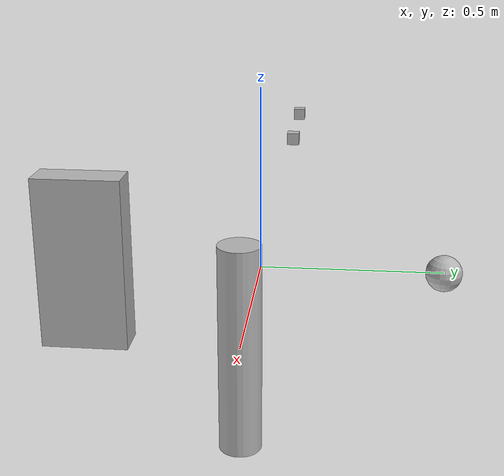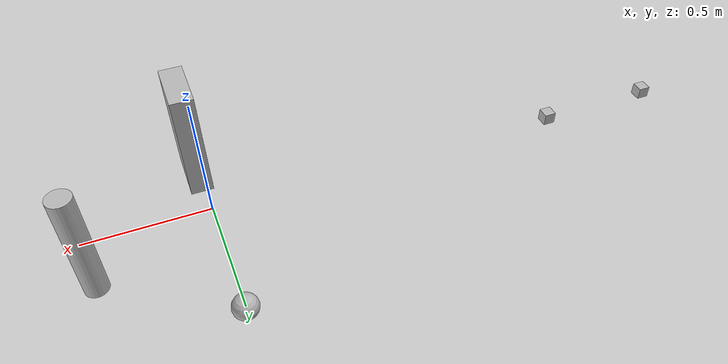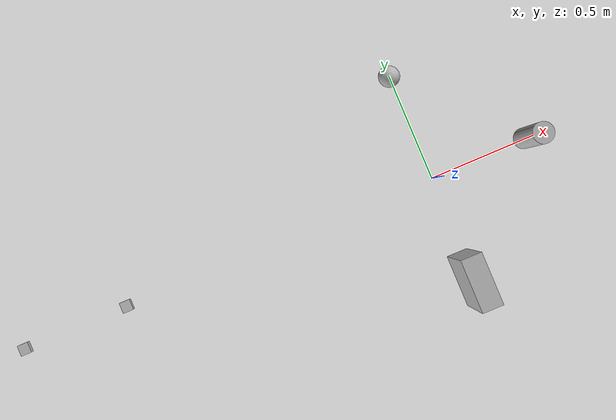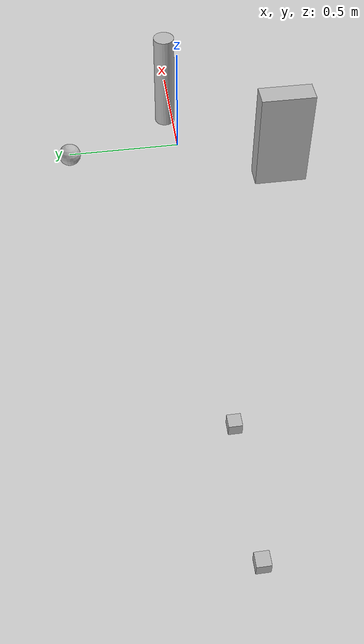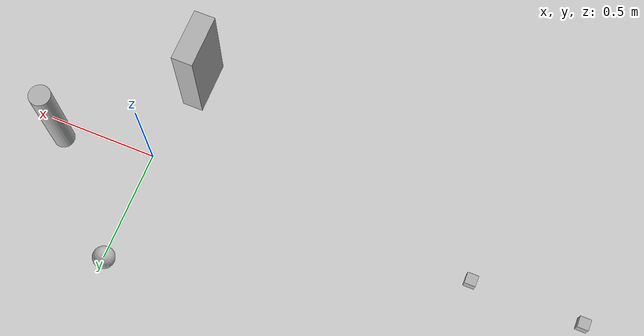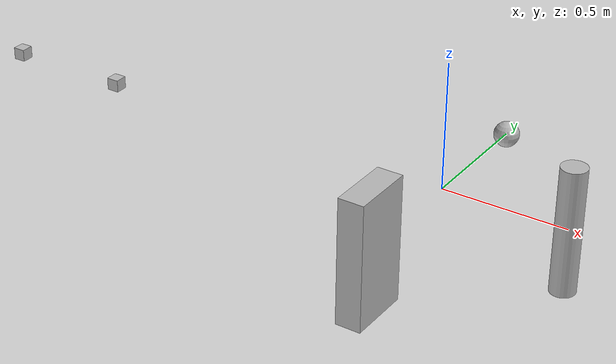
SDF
<sdf version="1.3">
 <world name="world_1">
  <scene>
   <ambient>0.5 0.5 0.5 1.0</ambient>
   <background>0.5 0.5 0.5 1.0</background>
   <shadows>true</shadows>
   <fog>
    <color>0.0 0.0 0.5 0.5</color>
    <type>linear</type>
    <start>2.0</start>
    <end>10.0</end>
    <density>0.5</density>
   </fog>
  </scene>
  <physics type="ode">
   <max_contacts>250</max_contacts>
   <ode>
    <solver><type>quick</type><dt>0.001</dt><iters>20</iters><sor>1.3</sor></solver>
    <constraints>
     <cfm>0</cfm>
     <erp>0.2</erp>
     <contact_max_correcting_vel>100.0</contact_max_correcting_vel>
     <contact_surface_layer>0.0</contact_surface_layer>
    </constraints>
   </ode>
   <gravity>0.0000 0 0</gravity>
  </physics>
  <model name="model_1">
   <pose>-1.5 0.0 0.0 0.0 0.0 0.0</pose>
   <link name="link_1">
    <inertial>
     <inertia><ixx>1.0</ixx><ixy>0.0</ixy><ixz>0.0</ixz><iyy>1.0</iyy><iyz>0.0</iyz><izz>1.0</izz></inertia>
     <mass>10.0</mass>
    </inertial>
    <visual name="visual_box">
     <geometry><box><size>0.05 0.05 0.05</size></box></geometry>
     <laser_retro>100.0</laser_retro>
    </visual>
    <collision name="collision_box">
     <max_contacts>250</max_contacts>
     <geometry><box><size>0.05 0.05 0.05</size></box></geometry>
     <surface>
      <friction>
       <ode><mu>0.5</mu><mu2>0.2</mu2><fdir1>1.0 0 0</fdir1><slip1>0</slip1><slip2>0</slip2></ode>
      </friction>
      <bounce><restitution_coefficient>0</restitution_coefficient><threshold>1000000.0</threshold></bounce>
      <contact>
       <ode>
        <soft_cfm>0</soft_cfm>
        <soft_erp>0.2</soft_erp>
        <kp>1e15</kp>
        <kd>1e13</kd>
        <max_vel>100.0</max_vel>
        <min_depth>0.0001</min_depth>
       </ode>
      </contact>
     </surface>
     <laser_retro>100.0</laser_retro>
    </collision>
    <sensor name="sensor_ray" type="ray">
     <ray>
      <scan display="true">
       <horizontal>
        <samples>300</samples>
        <resolution>1.0</resolution>
        <min_angle>-0.5236</min_angle>
        <max_angle>0.5236</max_angle>
       </horizontal>
       <vertical>
        <samples>100</samples>
        <resolution>1.0</resolution>
        <min_angle>-0.5236</min_angle>
        <max_angle>0.5236</max_angle>
       </vertical>
      </scan>
      <range><min>0.05</min><max>50.0</max></range>
     </ray>
     <plugin name="plugin_1" filename="libgazebo_ros_block_laser.so">
      <gaussianNoise>0.00</gaussianNoise>
      <alwaysOn>true</alwaysOn>
      <updateRate>20</updateRate>
      <topicName>test_block_laser</topicName>
      <frameName>base_link</frameName>
     </plugin>
     <always_on>true</always_on>
     <update_rate>10.0</update_rate>
    </sensor>
    <gravity>false</gravity>
    <self_collide>true</self_collide>
   </link>
   <static>false</static>
  </model>
  <model name="camera_model">
   <plugin name="plugin_1" filename="libmove_model_test.so"/>
   <pose>-2.0 0.0 0.0 0.0 0.0 0.0</pose>
   <link name="link_1">
    <inertial>
     <inertia><ixx>1.0</ixx><ixy>0.0</ixy><ixz>0.0</ixz><iyy>1.0</iyy><iyz>0.0</iyz><izz>1.0</izz></inertia>
     <mass>10.0</mass>
    </inertial>
    <visual name="visual_box">
     <geometry><box><size>0.05 0.05 0.05</size></box></geometry>
     <laser_retro>100.0</laser_retro>
    </visual>
    <collision name="collision_box">
     <max_contacts>250</max_contacts>
     <geometry><box><size>0.05 0.05 0.05</size></box></geometry>
     <surface>
      <friction>
       <ode><mu>0.5</mu><mu2>0.2</mu2><fdir1>1.0 0 0</fdir1><slip1>0</slip1><slip2>0</slip2></ode>
      </friction>
      <bounce><restitution_coefficient>0</restitution_coefficient><threshold>1000000.0</threshold></bounce>
      <contact>
       <ode>
        <soft_cfm>0</soft_cfm>
        <soft_erp>0.2</soft_erp>
        <kp>1e15</kp>
        <kd>1e13</kd>
        <max_vel>100.0</max_vel>
        <min_depth>0.0001</min_depth>
       </ode>
      </contact>
     </surface>
     <laser_retro>100.0</laser_retro>
    </collision>
    <sensor name="sensor_camera" type="camera">
     <camera>
      <horizontal_fov>2.57</horizontal_fov>
      <image><width>640</width><height>480</height><format>R8G8B8</format></image>
      <clip near="0.01" far="100.0"/>
      <save enabled="false" path="/tmp"/>
     </camera>
     <plugin name="plugin_1" filename="libgazebo_ros_camera.so">
      <alwaysOn>1</alwaysOn>
      <updateRate>10.0</updateRate>
      <cameraName>/test</cameraName>
      <imageTopicName>image_raw</imageTopicName>
      <pointCloudTopicName>points</pointCloudTopicName>
      <cameraInfoTopicName>camera_info</cameraInfoTopicName>
      <frameName>base_link</frameName>
      <pointCloudCutoff>0.5</pointCloudCutoff>
      <distortion_k1>0.00000001</distortion_k1>
      <distortion_k2>0.00000001</distortion_k2>
      <distortion_k3>0.00000001</distortion_k3>
      <distortion_t1>0.00000001</distortion_t1>
      <distortion_t2>0.00000001</distortion_t2>
     </plugin>
     <always_on>true</always_on>
     <update_rate>10.0</update_rate>
    </sensor>
    <gravity>false</gravity>
    <self_collide>true</self_collide>
   </link>
   <static>false</static>
  </model>
  <model name="object1">
   <link name="link_1">
    <pose>-0.1 -0.5 -0.5 0.0 0.0 0.0</pose>
    <inertial>
     <inertia><ixx>1.0</ixx><ixy>0.0</ixy><ixz>0.0</ixz><iyy>1.0</iyy><iyz>0.0</iyz><izz>1.0</izz></inertia>
     <mass>10.0</mass>
    </inertial>
    <visual name="visual_box">
     <pose>0.1 0.0 0.5 0.0 0.0 0.0</pose>
     <geometry><box><size>0.1 0.25 0.5</size></box></geometry>
     <laser_retro>100.0</laser_retro>
    </visual>
    <collision name="collision_box">
     <pose>0.1 0.0 0.5 0.0 0.0 0.0</pose>
     <max_contacts>250</max_contacts>
     <geometry><box><size>0.1 0.25 0.5</size></box></geometry>
     <surface>
      <friction>
       <ode><mu>0.5</mu><mu2>0.2</mu2><fdir1>1.0 0 0</fdir1><slip1>0</slip1><slip2>0</slip2></ode>
      </friction>
      <bounce><restitution_coefficient>0</restitution_coefficient><threshold>1000000.0</threshold></bounce>
      <contact>
       <ode>
        <soft_cfm>0</soft_cfm>
        <soft_erp>0.2</soft_erp>
        <kp>1e15</kp>
        <kd>1e13</kd>
        <max_vel>100.0</max_vel>
        <min_depth>0.0001</min_depth>
       </ode>
      </contact>
     </surface>
     <laser_retro>100.0</laser_retro>
    </collision>
    <self_collide>true</self_collide>
   </link>
   <link name="link_2">
    <pose>0.0 0.5 0.0 0.0 0.0 0.0</pose>
    <inertial>
     <inertia><ixx>1.0</ixx><ixy>0.0</ixy><ixz>0.0</ixz><iyy>1.0</iyy><iyz>0.0</iyz><izz>1.0</izz></inertia>
     <mass>10.0</mass>
    </inertial>
    <visual name="visual_box">
     <geometry><sphere><radius>0.05</radius></sphere></geometry>
     <laser_retro>100.0</laser_retro>
    </visual>
    <collision name="collision_box">
     <max_contacts>250</max_contacts>
     <geometry><sphere><radius>0.05</radius></sphere></geometry>
     <surface>
      <friction>
       <ode><mu>0.5</mu><mu2>0.2</mu2><fdir1>1.0 0 0</fdir1><slip1>0</slip1><slip2>0</slip2></ode>
      </friction>
      <bounce><restitution_coefficient>0</restitution_coefficient><threshold>1000000.0</threshold></bounce>
      <contact>
       <ode>
        <soft_cfm>0</soft_cfm>
        <soft_erp>0.2</soft_erp>
        <kp>1e15</kp>
        <kd>1e13</kd>
        <max_vel>100.0</max_vel>
        <min_depth>0.0001</min_depth>
       </ode>
      </contact>
     </surface>
     <laser_retro>100.0</laser_retro>
    </collision>
    <self_collide>true</self_collide>
   </link>
   <link name="link_3">
    <pose>0.5 0.0 0.0 0.0 0.0 0.0</pose>
    <inertial>
     <inertia><ixx>1.0</ixx><ixy>0.0</ixy><ixz>0.0</ixz><iyy>1.0</iyy><iyz>0.0</iyz><izz>1.0</izz></inertia>
     <mass>10.0</mass>
    </inertial>
    <visual name="visual_box">
     <geometry><cylinder><radius>0.05</radius><length>0.5</length></cylinder></geometry>
     <laser_retro>100.0</laser_retro>
    </visual>
    <collision name="collision_box">
     <max_contacts>250</max_contacts>
     <geometry><cylinder><radius>0.05</radius><length>0.5</length></cylinder></geometry>
     <surface>
      <friction>
       <ode><mu>0.5</mu><mu2>0.2</mu2><fdir1>1.0 0 0</fdir1><slip1>0</slip1><slip2>0</slip2></ode>
      </friction>
      <bounce><restitution_coefficient>0</restitution_coefficient><threshold>1000000.0</threshold></bounce>
      <contact>
       <ode>
        <soft_cfm>0</soft_cfm>
        <soft_erp>0.2</soft_erp>
        <kp>1e15</kp>
        <kd>1e13</kd>
        <max_vel>100.0</max_vel>
        <min_depth>0.0001</min_depth>
       </ode>
      </contact>
     </surface>
     <laser_retro>100.0</laser_retro>
    </collision>
    <self_collide>true</self_collide>
   </link>
   <static>false</static>
  </model>
  <light type="point" name="light_1">
   <pose>0.0 0.0 10.0 0.0 0.0 0.0</pose>
   <diffuse>0.5 0.5 0.5 0.5</diffuse>
   <attenuation><range>1000.0</range><constant>0.01</constant><quadratic>0.0001</quadratic></attenuation>
   <direction>0 0 -1</direction>
   <spot><inner_angle>1.57</inner_angle><outer_angle>1.57</outer_angle><falloff>1.0</falloff></spot>
  </light>
  <plugin name="gazebo_ros_api" filename="libgazebo_ros.so">
   <alwaysOn>1</alwaysOn>
   <updateRate>1000.0</updateRate>
  </plugin>
 </world>
</sdf>
